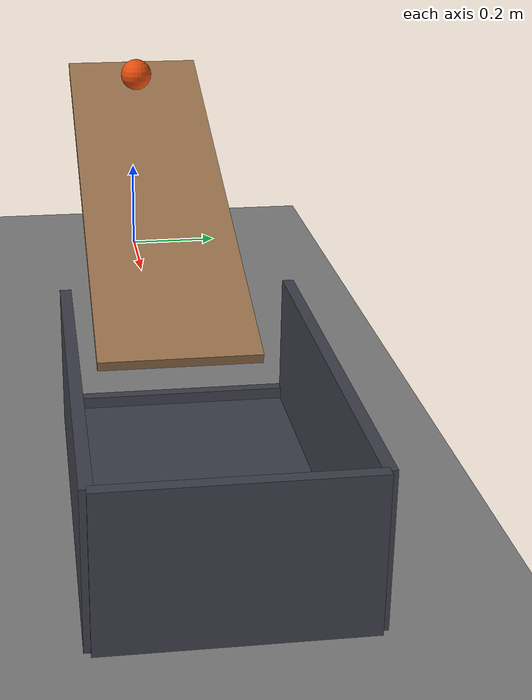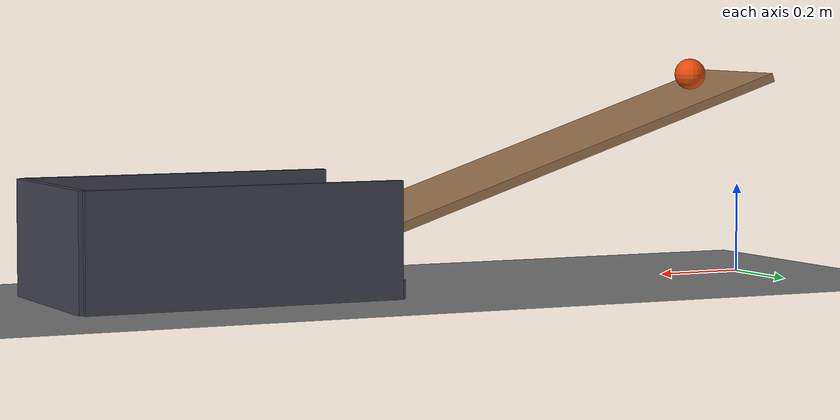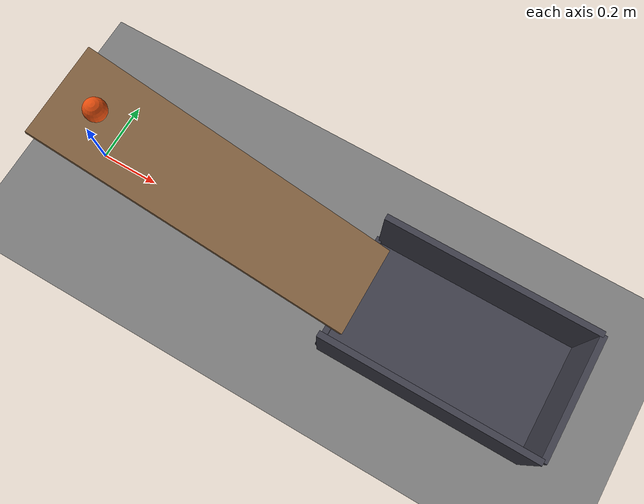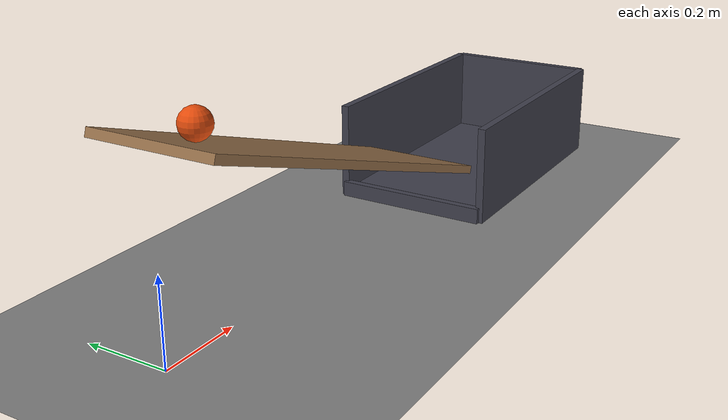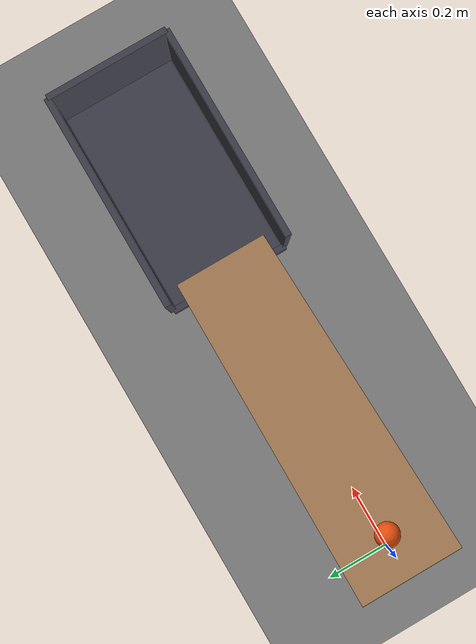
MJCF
<mujoco model="ball_rolls_down_a_ramp_into_a_cup">
  <compiler angle="radian"/>
  <option timestep="0.002"/>
  <worldbody>
    <geom name="floor" type="plane" size="4 4 0.1" friction="0.8 0.005 0.002"/>
    <body name="ramp">
      <geom name="ramp" type="box" pos="0.5 0 0.285" size="0.526522 0.15 0.01" euler="0 0.318748 0" friction="0.8 0.005 0.0005" solref="0.01 1" rgba="0.6 0.45 0.3 1"/>
    </body>
    <body name="cup">
      <geom name="cup_base" type="box" pos="1.3 0 0.01" size="0.35 0.2 0.01" friction="1 0.01 0.015" solref="0.01 1" rgba="0.25 0.25 0.3 1"/>
      <geom name="cup_near_wall" type="box" pos="0.95 0 0.02" size="0.01 0.2 0.02" friction="1 0.01 0.015" solref="0.01 1" rgba="0.25 0.25 0.3 1"/>
      <geom name="cup_far_wall" type="box" pos="1.65 0 0.125" size="0.01 0.2 0.125" friction="1 0.01 0.015" solref="0.01 1" rgba="0.25 0.25 0.3 1"/>
      <geom name="cup_left_wall" type="box" pos="1.3 0.2 0.125" size="0.35 0.01 0.125" friction="1 0.01 0.015" solref="0.01 1" rgba="0.25 0.25 0.3 1"/>
      <geom name="cup_right_wall" type="box" pos="1.3 -0.2 0.125" size="0.35 0.01 0.125" friction="1 0.01 0.015" solref="0.01 1" rgba="0.25 0.25 0.3 1"/>
    </body>
    <body name="ball" pos="0.128057 0 0.455128">
      <freejoint/>
      <geom name="ball" type="sphere" pos="0 0 0" size="0.035" mass="0.12" condim="6" friction="0.8 0.005 0.0005" solref="0.01 1" rgba="0.9 0.3 0.05 1"/>
    </body>
  </worldbody>
  <keyframe>
    <key name="start" qpos="0.128057 0 0.455128 1 0 0 0" qvel="0 0 0 0 0 0"/>
  </keyframe>
</mujoco>
